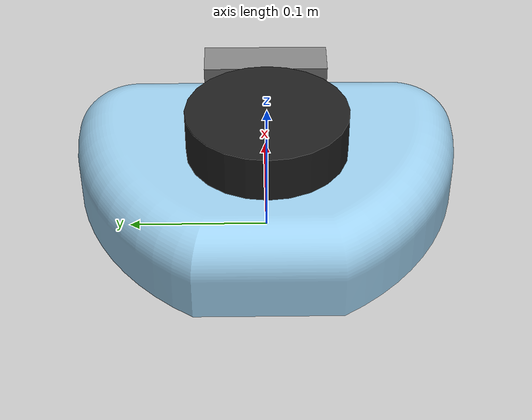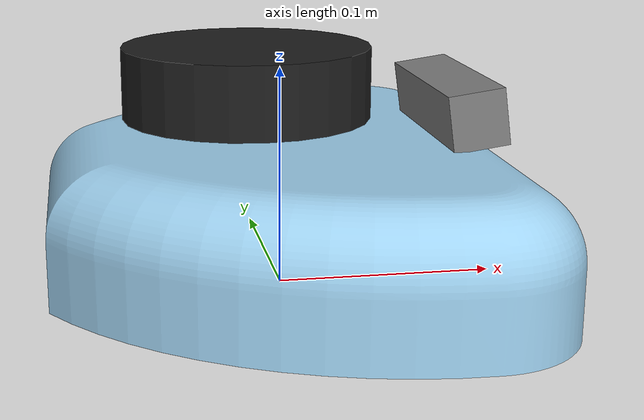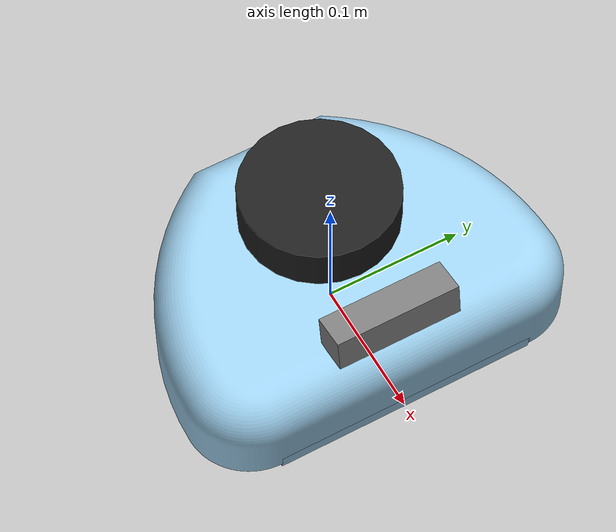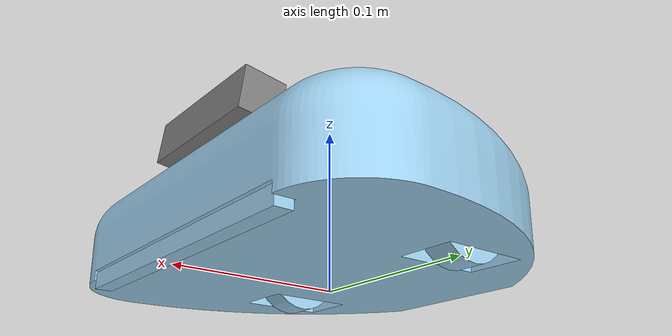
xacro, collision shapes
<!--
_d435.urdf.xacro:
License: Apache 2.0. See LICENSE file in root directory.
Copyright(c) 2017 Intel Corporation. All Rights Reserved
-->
<?xml version="1.0"?>

<robot name="abot" xmlns:xacro="http://ros.org/wiki/xacro">

<xacro:include filename="$(find abot_description)/urdf/robot.gazebo.xacro"/>
<xacro:include filename="$(find abot_description)/urdf/_d435.urdf.xacro" />

<link name="base_link"></link>

<joint name="base_link_to_base" type="fixed">
<parent link="base_link"/>
<child link="chassis" />
<origin  xyz="0 0 0.005" rpy="0 0 -1.5708"/>
</joint>

<link name="chassis">
<visual>
<origin xyz="9.21702e-10 0.00447478 0.0341544" rpy="0 -0 0" />
<geometry>
<mesh filename="package://abot_description/meshes/chassis.stl"/>
</geometry>
<material name="chassis_material">
<color rgba="0.615686 0.811765 0.929412 1.0"/>
</material>
</visual>
<collision>
<origin xyz="9.21702e-10 0.00447478 0.0341544" rpy="0 -0 0" />
<geometry>
<mesh filename="package://abot_description/meshes/chassis.stl"/>
</geometry>
<material name="chassis_material">
<color rgba="0.615686 0.811765 0.929412 1.0"/>
</material>
</collision>
<inertial>
<origin xyz="2.60802e-05 0.012071 0.0333924" rpy="0 0 0"/>
<mass value="6.95327" />
<inertia ixx="0.0230788" ixy="1.02453e-05"  ixz="5.81015e-08" iyy="0.0357403" iyz="4.25929e-05" izz="0.0548321" />
</inertial>
</link>

<link name="wheel">
<visual>
<origin xyz="0 0 -0.009" rpy="-1.5708 -1.5708 0" />
<geometry>
<mesh filename="package://abot_description/meshes/wheel.stl"/>
</geometry>
<material name="wheel_material">
<color rgba="0.615686 0.811765 0.929412 1.0"/>
</material>
</visual>
<!-- Shapes for wheel -->
<collision>
<origin xyz="0 0 -0.009" rpy="0 -0 -1.5708" />
<geometry>
<cylinder length="0.018" radius="0.025" />
</geometry>
</collision>
<inertial>
<origin xyz="0 2.01808e-18 -0.009" rpy="-1.5708 0 0"/>
<mass value="1.26704" />
<inertia ixx="0.000232186" ixy="0"  ixz="0" iyy="0.000395951" iyz="0" izz="0.000232186" />
</inertial>
</link>

<joint name="RW" type="continuous">
<origin xyz="0.0846 -0.0295252 0.0241544" rpy="-1.5708 -0 -1.5708" />
<parent link="chassis" />
<child link="wheel" />
<axis xyz="0 0 -1"/>
</joint>

<!-- Transmission is important to link the joints and the controller -->
<transmission name="RM_trans">
    <type>transmission_interface/SimpleTransmission</type>
    <joint name="RW">
        <hardwareInterface>hardware_interface/VelocityJointInterface</hardwareInterface>
    </joint>
    <actuator name="RM_motor">
        <hardwareInterface>VelocityJointInterface</hardwareInterface>
        <mechanicalReduction>1</mechanicalReduction>
    </actuator>
</transmission>

<link name="wheel_2">
<visual>
<origin xyz="0 0 -0.009" rpy="1.5708 1.5708 0" />
<geometry>
<mesh filename="package://abot_description/meshes/wheel.stl"/>
</geometry>
<material name="wheel_material">
<color rgba="0.615686 0.811765 0.929412 1.0"/>
</material>
</visual>
<!-- Shapes for wheel -->
<collision>
<origin xyz="0 0 -0.009" rpy="3.14159 -0 1.5708" />
<geometry>
<cylinder length="0.018" radius="0.025" />
</geometry>
</collision>
<inertial>
<origin xyz="0 -2.01808e-18 -0.009" rpy="-1.5708 0 0"/>
<mass value="1.26704" />
<inertia ixx="0.000232186" ixy="0"  ixz="0" iyy="0.000395951" iyz="0" izz="0.000232186" />
</inertial>
</link>

<joint name="LW" type="continuous">
<origin xyz="-0.0846 -0.0295252 0.0241544" rpy="-1.5708 -0 1.5708" />
<parent link="chassis" />
<child link="wheel_2" />
<axis xyz="0 0 1"/>
</joint>
<!-- Transmission is important to link the joints and the controller -->
<transmission name="LM_trans">
    <type>transmission_interface/SimpleTransmission</type>
    <joint name="LW">
        <hardwareInterface>hardware_interface/VelocityJointInterface</hardwareInterface>
    </joint>
    <actuator name="LM_motor">
        <hardwareInterface>VelocityJointInterface</hardwareInterface>
        <mechanicalReduction>1</mechanicalReduction>
    </actuator>
</transmission>

<link name="roller">
<visual>
<origin xyz="0 0 -0.094554" rpy="-1.5708 -1.5708 0" />
<geometry>
<mesh filename="package://abot_description/meshes/roller.stl"/>
</geometry>
<material name="roller_material">
<color rgba="0.615686 0.811765 0.929412 1.0"/>
</material>
</visual>
<!-- Shapes for roller -->
<collision>
<origin xyz="0 0 -0.094554" rpy="0 -0 -1.5708" />
<geometry>
<box size="0.01 0.01 0.189108" />
</geometry>
</collision>
<inertial>
<origin xyz="0 4.03616e-19 -0.094554" rpy="0 0 -1.5708"/>
<mass value="0.532463" />
<inertia ixx="0.00159015" ixy="0"  ixz="0" iyy="6.65578e-06" iyz="0" izz="0.00159015" />
</inertial>
</link>

<joint name="Rol" type="fixed">
<origin xyz="0.094554 0.0980656 0.00415444" rpy="1.5708 -0 1.5708" />
<parent link="chassis" />
<child link="roller" />
<axis xyz="0 0 1"/>
</joint>

<!--Lidar and imu -->
  <joint name="imu_joint" type="fixed">
    <parent link="chassis"/>
    <child link="imu_link"/>
    <origin xyz="0 0 0" rpy="0 0 0"/>-->
  </joint>

  <link name="imu_link"/>

  <joint name="scan_joint" type="fixed">
    <parent link="chassis"/>
    <child link="base_scan"/>
    <origin xyz="0 0 0.096" rpy="0 0 -1.5708"/>
  </joint>

  <link name="base_scan">
    <visual>
      <origin xyz="0 0 0.0" rpy="0 0 0"/>
      <geometry>
        <mesh filename="package://abot_description/meshes/lds.stl" scale="0.001 0.001 0.001"/>
      </geometry>
      <material name="dark"/>
    </visual>

    <collision>
      <origin xyz="0.015 0 -0.0065" rpy="0 0 0"/>
      <geometry>
        <cylinder length="0.0315" radius="0.055"/>
      </geometry>
    </collision>

    <inertial>
      <mass value="0.114" />
      <origin xyz="0 0 0" />
      <inertia ixx="0.001" ixy="0.0" ixz="0.0"
               iyy="0.001" iyz="0.0"
               izz="0.001" />
    </inertial>
  </link>

  <xacro:sensor_d435 name="camera" topics_ns="camera" parent="chassis" publish_pointcloud="true">
    <origin xyz="0 0.08 0.065" rpy="0 -0.139626 1.5708" /> <!-- tilted 8 degree up -->
  </xacro:sensor_d435>
</robot>

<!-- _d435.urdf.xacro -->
<robot name="sensor_d435" xmlns:xacro="http://ros.org/wiki/xacro">
  <!--File includes-->
  <xacro:include filename="$(find abot_description)/urdf/_d435.gazebo.xacro"/>

  <xacro:macro name="sensor_d435" params="name:=camera topics_ns:=camera parent *origin publish_pointcloud:=true">
    <xacro:property name="M_PI" value="3.1415926535897931" />

    <!-- The following values are approximate, and the camera node
     publishing TF values with actual calibrated camera extrinsic values -->
    <xacro:property name="d435_cam_depth_to_left_ir_offset" value="0.0"/>
    <xacro:property name="d435_cam_depth_to_right_ir_offset" value="-0.050"/>
    <xacro:property name="d435_cam_depth_to_color_offset" value="0.015"/>

    <!-- The following values model the aluminum peripherial case for the
    D435 camera, with the camera joint represented by the actual
    peripherial camera tripod mount -->
    <xacro:property name="d435_cam_width" value="0.090"/>
    <xacro:property name="d435_cam_height" value="0.025"/>
    <xacro:property name="d435_cam_depth" value="0.02505"/>
    <xacro:property name="d435_cam_mount_from_center_offset" value="0.0149"/>

    <!-- The following offset is relative the the physical D435 camera peripherial
    camera tripod mount -->
    <xacro:property name="d435_cam_depth_px" value="${d435_cam_mount_from_center_offset}"/>
    <xacro:property name="d435_cam_depth_py" value="0.0175"/>
    <xacro:property name="d435_cam_depth_pz" value="${d435_cam_height/2}"/>

    <material name="${name}_aluminum">
    <color rgba="0.5 0.5 0.5 1"/>
    </material>

    <!-- camera body, with origin at bottom screw mount -->
    <joint name="${name}_joint" type="fixed">
      <xacro:insert_block name="origin" />
      <parent link="${parent}"/>
      <child link="${name}_bottom_screw_frame" />
    </joint>
    <link name="${name}_bottom_screw_frame"/>

    <joint name="${name}_link_joint" type="fixed">
      <origin xyz="0 ${d435_cam_depth_py} ${d435_cam_depth_pz}" rpy="0 0 0"/>
      <parent link="${name}_bottom_screw_frame"/>
      <child link="${name}_link" />
    </joint>

    <link name="${name}_link">
      <visual>
      <origin xyz="${d435_cam_mount_from_center_offset} ${-d435_cam_depth_py} 0" rpy="${M_PI/2} 0 ${M_PI/2}"/>
        <geometry>
          <mesh filename="package://abot_description/meshes/d435.dae" />
        </geometry>
        <material name="${name}_aluminum"/>
      </visual>
      <collision>
        <origin xyz="0 ${-d435_cam_depth_py} 0" rpy="0 0 0"/>
        <geometry>
        <box size="${d435_cam_depth} ${d435_cam_width} ${d435_cam_height}"/>
        </geometry>
      </collision>
      <inertial>
        <!-- The following are not reliable values, and should not be used for modeling -->
        <mass value="0.564" />
        <origin xyz="0 0 0" />
        <inertia ixx="0.003881243" ixy="0.0" ixz="0.0" iyy="0.000498940" iyz="0.0" izz="0.003879257" />
      </inertial>
    </link>

    <!-- camera depth joints and links -->
    <joint name="${name}_depth_joint" type="fixed">
      <origin xyz="0 0 0" rpy="0 0 0"/>
      <parent link="${name}_link"/>
      <child link="${name}_depth_frame" />
    </joint>
    <link name="${name}_depth_frame"/>

    <joint name="${name}_depth_optical_joint" type="fixed">
      <origin xyz="0 0 0" rpy="${-M_PI/2} 0 ${-M_PI/2}" />
      <parent link="${name}_depth_frame" />
      <child link="${name}_depth_optical_frame" />
    </joint>
    <link name="${name}_depth_optical_frame"/>

    <!-- camera left IR joints and links -->
    <joint name="${name}_left_ir_joint" type="fixed">
      <origin xyz="0 ${d435_cam_depth_to_left_ir_offset} 0" rpy="0 0 0" />
      <parent link="${name}_depth_frame" />
      <child link="${name}_left_ir_frame" />
    </joint>
    <link name="${name}_left_ir_frame"/>

    <joint name="${name}_left_ir_optical_joint" type="fixed">
      <origin xyz="0 0 0" rpy="${-M_PI/2} 0 ${-M_PI/2}" />
      <parent link="${name}_left_ir_frame" />
      <child link="${name}_left_ir_optical_frame" />
    </joint>
    <link name="${name}_left_ir_optical_frame"/>

    <!-- camera right IR joints and links -->
    <joint name="${name}_right_ir_joint" type="fixed">
      <origin xyz="0 ${d435_cam_depth_to_right_ir_offset} 0" rpy="0 0 0" />
      <parent link="${name}_depth_frame" />
      <child link="${name}_right_ir_frame" />
    </joint>
    <link name="${name}_right_ir_frame"/>

    <joint name="${name}_right_ir_optical_joint" type="fixed">
      <origin xyz="0 0 0" rpy="${-M_PI/2} 0 ${-M_PI/2}" />
      <parent link="${name}_right_ir_frame" />
      <child link="${name}_right_ir_optical_frame" />
    </joint>
    <link name="${name}_right_ir_optical_frame"/>

    <!-- camera color joints and links -->
    <joint name="${name}_color_joint" type="fixed">
      <origin xyz="0 ${d435_cam_depth_to_color_offset} 0" rpy="0 0 0" />
      <parent link="${name}_depth_frame" />
      <child link="${name}_color_frame" />
    </joint>
    <link name="${name}_color_frame"/>

    <joint name="${name}_color_optical_joint" type="fixed">
      <origin xyz="0 0 0" rpy="${-M_PI/2} 0 ${-M_PI/2}" />
      <parent link="${name}_color_frame" />
      <child link="${name}_color_optical_frame" />
    </joint>
    <link name="${name}_color_optical_frame"/>

    <!-- Realsense Gazebo Plugin -->
    <xacro:gazebo_d435 camera_name="${name}" reference_link="${name}_link" topics_ns="${topics_ns}" depth_optical_frame="${name}_depth_optical_frame" color_optical_frame="${name}_color_optical_frame" infrared1_optical_frame="${name}_left_ir_optical_frame" infrared2_optical_frame="${name}_right_ir_optical_frame" publish_pointcloud="${publish_pointcloud}"/>

  </xacro:macro>
</robot>
